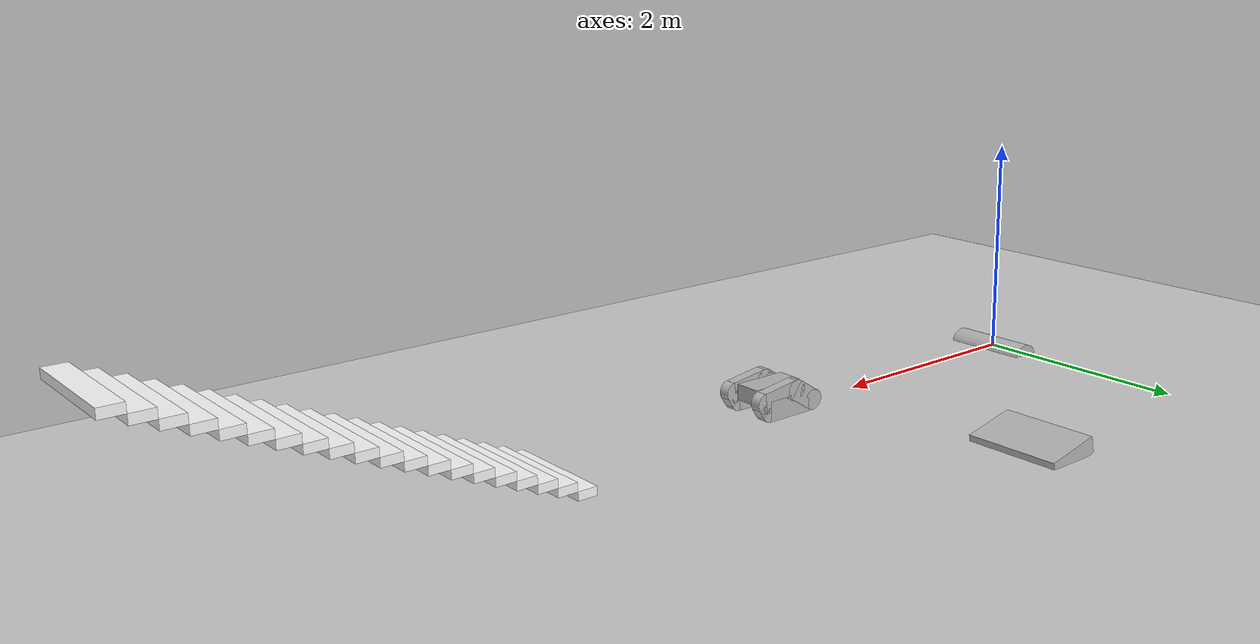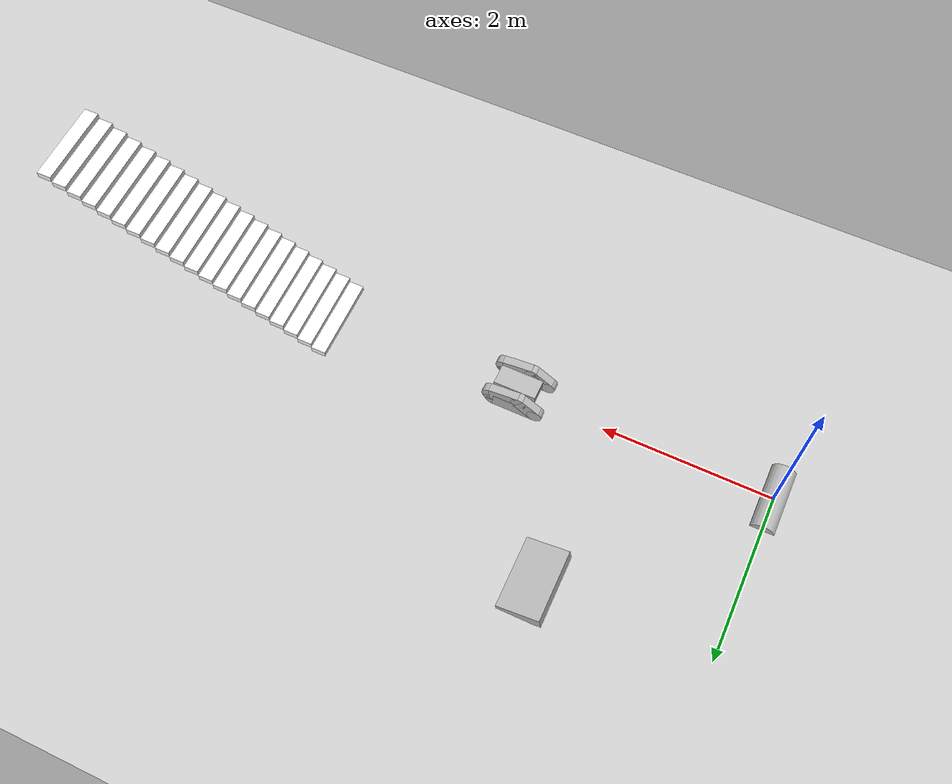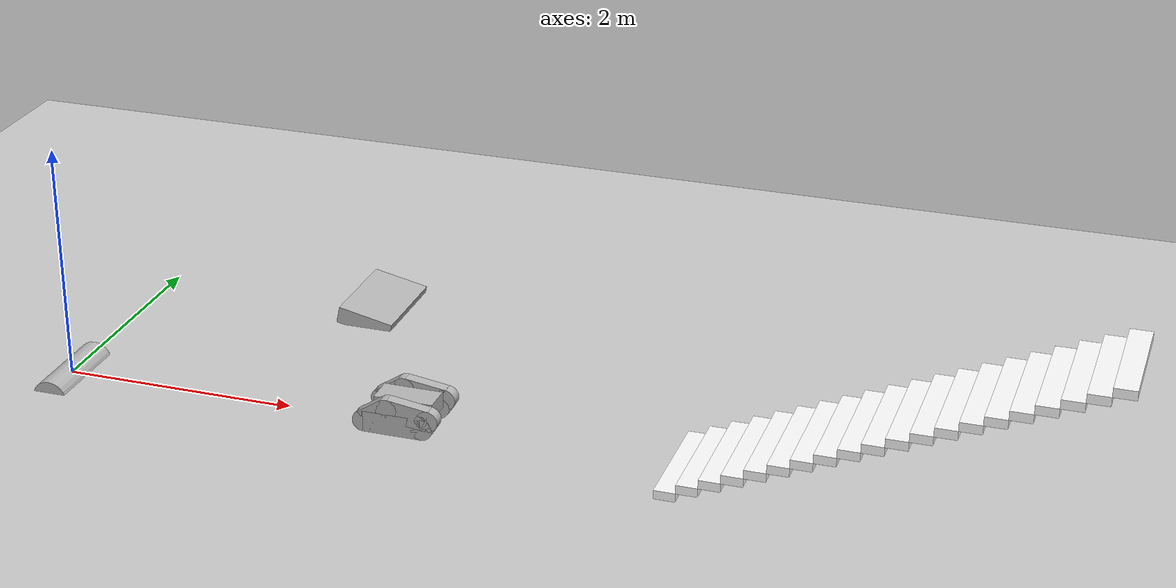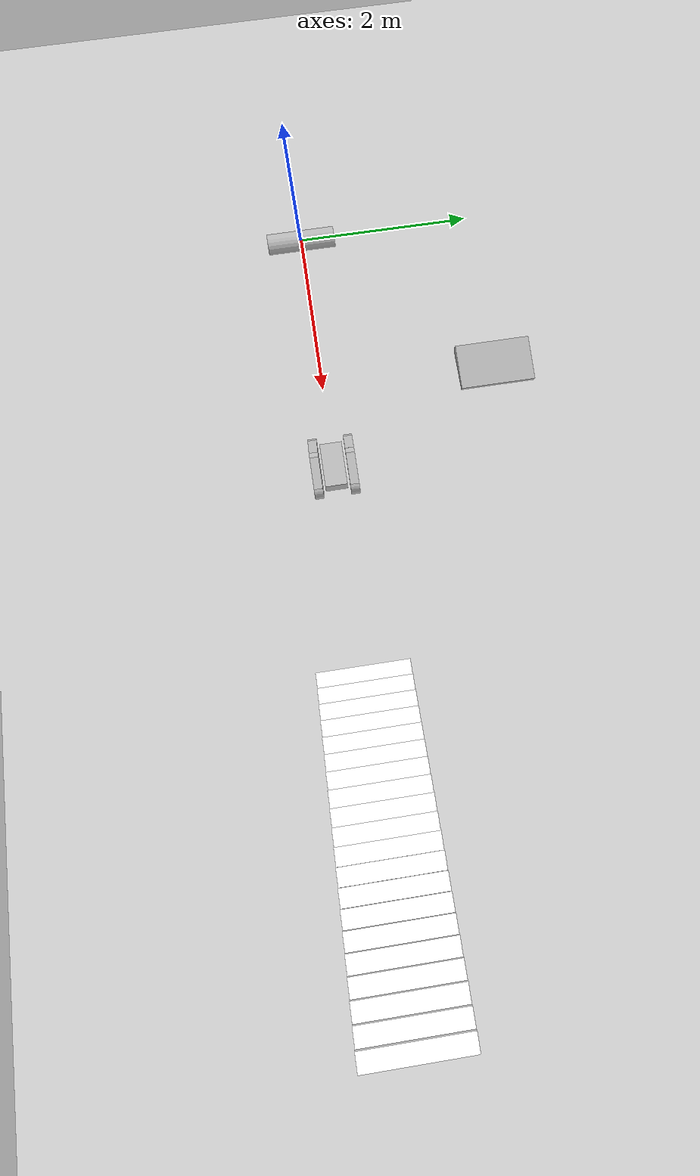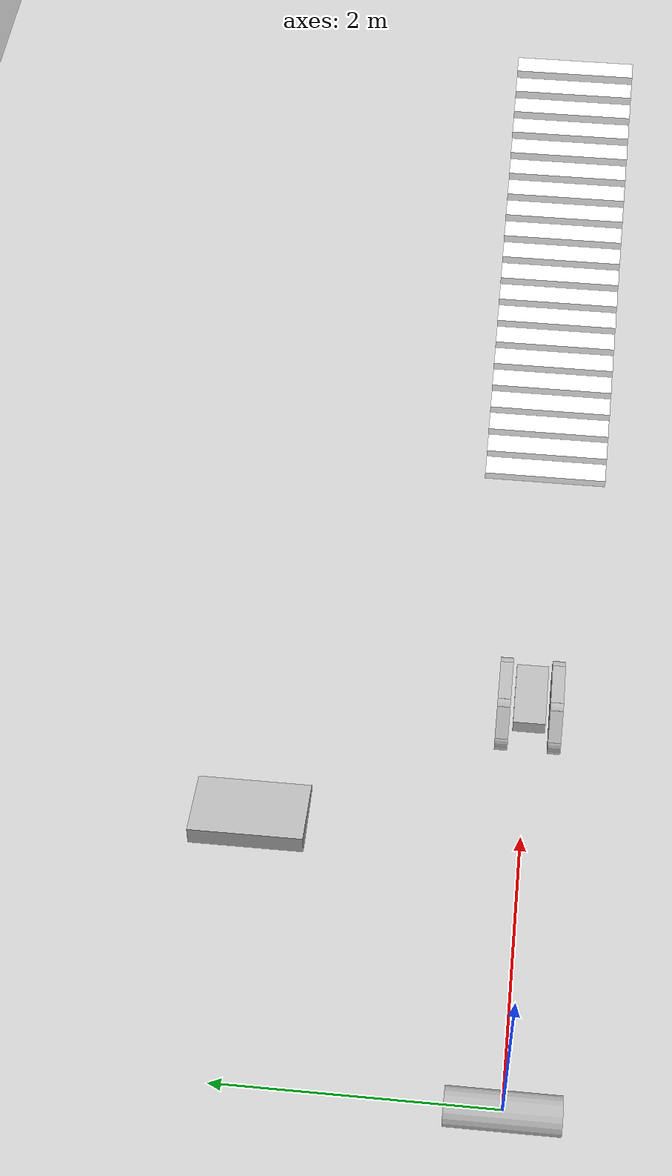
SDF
<sdf version="1.7">
 <world name="default">
  <physics name="4ms" type="ignored">
   <max_step_size>0.004</max_step_size>
   <real_time_factor>1.0</real_time_factor>
  </physics>
  <plugin name="gz::sim::systems::Physics" filename="gz-sim-physics-system"/>
  <plugin name="gz::sim::systems::UserCommands" filename="gz-sim-user-commands-system"/>
  <plugin name="gz::sim::systems::SceneBroadcaster" filename="gz-sim-scene-broadcaster-system"/>
  <scene><ambient>1 1 1 1</ambient><background>0.8 0.8 0.8 1</background><shadows>1</shadows></scene>
  <light name="sun" type="directional">
   <pose>0 0 10 0 0 0</pose>
   <diffuse>0.8 0.8 0.8 1</diffuse>
   <specular>0.8 0.8 0.8 1</specular>
   <attenuation>
    <range>1000</range>
    <constant>0.9</constant>
    <linear>0.01</linear>
    <quadratic>0.001</quadratic>
   </attenuation>
   <direction>-0.5 0.1 -0.9</direction>
  </light>
  <model name="ground_plane">
   <static>1</static>
   <link name="link">
    <collision name="collision">
     <geometry><plane><normal>0 0 1</normal><size>100 100</size></plane></geometry>
    </collision>
    <visual name="visual">
     <geometry><plane><normal>0 0 1</normal><size>100 100</size></plane></geometry>
     <material>
      <ambient>0.8 0.8 0.8 1</ambient>
      <diffuse>0.8 0.8 0.8 1</diffuse>
      <specular>0.8 0.8 0.8 1</specular>
     </material>
    </visual>
   </link>
  </model>
  <model name="simple_tracked">
   <pose>3 0 0.1 0 0 0</pose>
   <link name="base_link">
    <inertial>
     <pose>0.05 0 0.118 1.5708 0 0</pose>
     <mass>13.14</mass>
     <inertia>
      <ixx>0.10019</ixx>
      <ixy>0</ixy>
      <ixz>0</ixz>
      <iyy>0.345043</iyy>
      <iyz>0</iyz>
      <izz>0.302044</izz>
     </inertia>
    </inertial>
    <collision name="base_link_collision">
     <pose>0.05 0 0.118 0 0 0</pose>
     <geometry><box><size>0.50017 0.24093 0.139</size></box></geometry>
    </collision>
    <visual name="base_link_visual">
     <pose>0.05 0 0.118 0 0 0</pose>
     <geometry><box><size>0.50017 0.24093 0.139</size></box></geometry>
    </visual>
   </link>
   <link name="left_track">
    <pose>0 0.1985 0 0 0 0</pose>
    <inertial>
     <pose>0 0 0.0141 0 0 0</pose>
     <mass>6.06</mass>
     <inertia>
      <ixx>0.002731</ixx>
      <ixy>0</ixy>
      <ixz>0</ixz>
      <iyy>0.032554</iyy>
      <iyz>1.5e-05</iyz>
      <izz>0.031391</izz>
     </inertia>
    </inertial>
    <collision name="left_track_collision_cylinder_1">
     <pose>0.25 0 0.01855 1.5708 0 0</pose>
     <geometry><cylinder><length>0.09728</length><radius>0.09047</radius></cylinder></geometry>
     <surface><friction><ode><mu>0.9</mu><mu2>150</mu2><fdir1>0 1 0</fdir1></ode></friction></surface>
    </collision>
    <collision name="left_track_collision_cylinder_2">
     <pose>-0.25 0 0.01855 1.5708 0 0</pose>
     <geometry><cylinder><length>0.09728</length><radius>0.09047</radius></cylinder></geometry>
     <surface><friction><ode><mu>0.9</mu><mu2>150</mu2><fdir1>0 1 0</fdir1></ode></friction></surface>
    </collision>
    <collision name="left_track_collision_cylinder_4">
     <pose>0.3 0 0.1 1.5708 0 0</pose>
     <geometry><cylinder><length>0.09728</length><radius>0.09047</radius></cylinder></geometry>
     <surface><friction><ode><mu>0.9</mu><mu2>150</mu2><fdir1>0 1 0</fdir1></ode></friction></surface>
    </collision>
    <collision name="left_track_collision_box_1">
     <pose>0 0 0.01855 1.5708 0 1.5708</pose>
     <geometry><box><size>0.09728 0.18094 0.5</size></box></geometry>
     <surface><friction><ode><mu>0.9</mu><mu2>150</mu2><fdir1>0 1 0</fdir1></ode></friction></surface>
    </collision>
    <collision name="left_track_collision_box_4">
     <pose>0.275 0 0.05928 0.55058 0 1.5708</pose>
     <geometry><box><size>0.09728 0.18094 0.09557</size></box></geometry>
     <surface><friction><ode><mu>0.9</mu><mu2>150</mu2><fdir1>0 1 0</fdir1></ode></friction></surface>
    </collision>
    <visual name="left_track_visual_cylinder_1">
     <pose>0.25 0 0.01855 1.5708 0 0</pose>
     <geometry><cylinder><length>0.09728</length><radius>0.09047</radius></cylinder></geometry>
    </visual>
    <visual name="left_track_visual_cylinder_2">
     <pose>-0.25 0 0.01855 1.5708 0 0</pose>
     <geometry><cylinder><length>0.09728</length><radius>0.09047</radius></cylinder></geometry>
    </visual>
    <visual name="left_track_visual_cylinder_3">
     <pose>-0.05 0 0.15 1.5708 0 0</pose>
     <geometry><cylinder><length>0.09728</length><radius>0.09047</radius></cylinder></geometry>
    </visual>
    <visual name="left_track_visual_cylinder_4">
     <pose>0.3 0 0.1 1.5708 0 0</pose>
     <geometry><cylinder><length>0.09728</length><radius>0.09047</radius></cylinder></geometry>
    </visual>
    <visual name="left_track_visual_box_1">
     <pose>0 0 0.01855 1.5708 0 1.5708</pose>
     <geometry><box><size>0.09728 0.18094 0.5</size></box></geometry>
    </visual>
    <visual name="left_track_visual_box_2">
     <pose>-0.15 0 0.08428 0.98935 0 1.5708</pose>
     <geometry><box><size>0.09728 0.18094 0.23933</size></box></geometry>
    </visual>
    <visual name="left_track_visual_box_3">
     <pose>0.125 0 0.125 -1.4289 0 1.5708</pose>
     <geometry><box><size>0.09728 0.18094 0.35355</size></box></geometry>
    </visual>
    <visual name="left_track_visual_box_4">
     <pose>0.275 0 0.05928 0.55058 0 1.5708</pose>
     <geometry><box><size>0.09728 0.18094 0.09557</size></box></geometry>
    </visual>
   </link>
   <joint name="left_track_j" type="fixed"><child>left_track</child><parent>base_link</parent></joint>
   <link name="right_track">
    <pose>0 -0.1985 0 0 0 0</pose>
    <inertial>
     <pose>0 0 0.0141 0 0 0</pose>
     <mass>6.06</mass>
     <inertia>
      <ixx>0.002731</ixx>
      <ixy>0</ixy>
      <ixz>0</ixz>
      <iyy>0.032554</iyy>
      <iyz>1.5e-05</iyz>
      <izz>0.031391</izz>
     </inertia>
    </inertial>
    <collision name="right_track_collision_cylinder_1">
     <pose>0.25 0 0.01855 1.5708 0 0</pose>
     <geometry><cylinder><length>0.09728</length><radius>0.09047</radius></cylinder></geometry>
     <surface><friction><ode><mu>0.9</mu><mu2>150</mu2><fdir1>0 1 0</fdir1></ode></friction></surface>
    </collision>
    <collision name="right_track_collision_cylinder_2">
     <pose>-0.25 0 0.01855 1.5708 0 0</pose>
     <geometry><cylinder><length>0.09728</length><radius>0.09047</radius></cylinder></geometry>
     <surface><friction><ode><mu>0.9</mu><mu2>150</mu2><fdir1>0 1 0</fdir1></ode></friction></surface>
    </collision>
    <collision name="right_track_collision_cylinder_4">
     <pose>0.3 0 0.1 1.5708 0 0</pose>
     <geometry><cylinder><length>0.09728</length><radius>0.09047</radius></cylinder></geometry>
     <surface><friction><ode><mu>0.9</mu><mu2>150</mu2><fdir1>0 1 0</fdir1></ode></friction></surface>
    </collision>
    <collision name="right_track_collision_box_1">
     <pose>0 0 0.01855 1.5708 0 1.5708</pose>
     <geometry><box><size>0.09728 0.18094 0.5</size></box></geometry>
     <surface><friction><ode><mu>0.9</mu><mu2>150</mu2><fdir1>0 1 0</fdir1></ode></friction></surface>
    </collision>
    <collision name="right_track_collision_box_4">
     <pose>0.275 0 0.05928 0.55058 0 1.5708</pose>
     <geometry><box><size>0.09728 0.18094 0.09557</size></box></geometry>
     <surface><friction><ode><mu>0.9</mu><mu2>150</mu2><fdir1>0 1 0</fdir1></ode></friction></surface>
    </collision>
    <visual name="right_track_visual_cylinder_1">
     <pose>0.25 0 0.01855 1.5708 0 0</pose>
     <geometry><cylinder><length>0.09728</length><radius>0.09047</radius></cylinder></geometry>
    </visual>
    <visual name="right_track_visual_cylinder_2">
     <pose>-0.25 0 0.01855 1.5708 0 0</pose>
     <geometry><cylinder><length>0.09728</length><radius>0.09047</radius></cylinder></geometry>
    </visual>
    <visual name="right_track_visual_cylinder_3">
     <pose>-0.05 0 0.15 1.5708 0 0</pose>
     <geometry><cylinder><length>0.09728</length><radius>0.09047</radius></cylinder></geometry>
    </visual>
    <visual name="right_track_visual_cylinder_4">
     <pose>0.3 0 0.1 1.5708 0 0</pose>
     <geometry><cylinder><length>0.09728</length><radius>0.09047</radius></cylinder></geometry>
    </visual>
    <visual name="right_track_visual_box_1">
     <pose>0 0 0.01855 1.5708 0 1.5708</pose>
     <geometry><box><size>0.09728 0.18094 0.5</size></box></geometry>
    </visual>
    <visual name="right_track_visual_box_2">
     <pose>-0.15 0 0.08428 0.98935 0 1.5708</pose>
     <geometry><box><size>0.09728 0.18094 0.23933</size></box></geometry>
    </visual>
    <visual name="right_track_visual_box_3">
     <pose>0.125 0 0.125 -1.4289 0 1.5708</pose>
     <geometry><box><size>0.09728 0.18094 0.35355</size></box></geometry>
    </visual>
    <visual name="right_track_visual_box_4">
     <pose>0.275 0 0.05928 0.55058 0 1.5708</pose>
     <geometry><box><size>0.09728 0.18094 0.09557</size></box></geometry>
    </visual>
   </link>
   <joint name="right_track_j" type="fixed"><child>right_track</child><parent>base_link</parent></joint>
   <plugin name="gz::sim::systems::TrackedVehicle" filename="gz-sim-tracked-vehicle-system">
    <left_track><link>left_track</link></left_track>
    <left_track><link>front_left_flipper</link></left_track>
    <right_track><link>right_track</link></right_track>
    <right_track><link>front_right_flipper</link></right_track>
    <tracks_separation>0.4</tracks_separation>
    <tracks_height>0.18094</tracks_height>
    <steering_efficiency>0.5</steering_efficiency>
   </plugin>
   <plugin name="gz::sim::systems::TrackController" filename="gz-sim-track-controller-system">
    <link>left_track</link>
    <min_velocity>-5.0</min_velocity>
    <max_velocity>5.0</max_velocity>
   </plugin>
   <plugin name="gz::sim::systems::TrackController" filename="gz-sim-track-controller-system">
    <link>right_track</link>
    <min_velocity>-5.0</min_velocity>
    <max_velocity>5.0</max_velocity>
   </plugin>
   <plugin name="gz::sim::systems::TrackController" filename="gz-sim-track-controller-system">
    <link>front_left_flipper</link>
    <min_velocity>-5.0</min_velocity>
    <max_velocity>5.0</max_velocity>
   </plugin>
   <plugin name="gz::sim::systems::TrackController" filename="gz-sim-track-controller-system">
    <link>front_right_flipper</link>
    <min_velocity>-5.0</min_velocity>
    <max_velocity>5.0</max_velocity>
   </plugin>
   <plugin filename="gz-sim-triggered-publisher-system" name="gz::sim::systems::TriggeredPublisher">
    <input type="gz.msgs.Int32" topic="/keyboard/keypress"><match field="data">87</match></input>
    <output type="gz.msgs.Twist" topic="/model/simple_tracked/cmd_vel">linear: {x: 1.0}, angular: {z: 0.0}</output>
   </plugin>
   <plugin filename="gz-sim-triggered-publisher-system" name="gz::sim::systems::TriggeredPublisher">
    <input type="gz.msgs.Int32" topic="/keyboard/keypress"><match field="data">88</match></input>
    <output type="gz.msgs.Twist" topic="/model/simple_tracked/cmd_vel">linear: {x: -1.0}, angular: {z: 0.0}</output>
   </plugin>
   <plugin filename="gz-sim-triggered-publisher-system" name="gz::sim::systems::TriggeredPublisher">
    <input type="gz.msgs.Int32" topic="/keyboard/keypress"><match field="data">83</match></input>
    <output type="gz.msgs.Twist" topic="/model/simple_tracked/cmd_vel">linear: {x: 0.0}, angular: {z: 0.0}</output>
   </plugin>
   <plugin filename="gz-sim-triggered-publisher-system" name="gz::sim::systems::TriggeredPublisher">
    <input type="gz.msgs.Int32" topic="/keyboard/keypress"><match field="data">65</match></input>
    <output type="gz.msgs.Twist" topic="/model/simple_tracked/cmd_vel">linear: {x: 0.0}, angular: {z: 1.0}</output>
   </plugin>
   <plugin filename="gz-sim-triggered-publisher-system" name="gz::sim::systems::TriggeredPublisher">
    <input type="gz.msgs.Int32" topic="/keyboard/keypress"><match field="data">68</match></input>
    <output type="gz.msgs.Twist" topic="/model/simple_tracked/cmd_vel">linear: {x: 0.0}, angular: {z: -1.0}</output>
   </plugin>
   <plugin filename="gz-sim-triggered-publisher-system" name="gz::sim::systems::TriggeredPublisher">
    <input type="gz.msgs.Int32" topic="/keyboard/keypress"><match field="data">81</match></input>
    <output type="gz.msgs.Twist" topic="/model/simple_tracked/cmd_vel">linear: {x: 1.0}, angular: {z: 1.0}</output>
   </plugin>
   <plugin filename="gz-sim-triggered-publisher-system" name="gz::sim::systems::TriggeredPublisher">
    <input type="gz.msgs.Int32" topic="/keyboard/keypress"><match field="data">69</match></input>
    <output type="gz.msgs.Twist" topic="/model/simple_tracked/cmd_vel">linear: {x: 1.0}, angular: {z: -1.0}</output>
   </plugin>
   <plugin filename="gz-sim-triggered-publisher-system" name="gz::sim::systems::TriggeredPublisher">
    <input type="gz.msgs.Int32" topic="/keyboard/keypress"><match field="data">90</match></input>
    <output type="gz.msgs.Twist" topic="/model/simple_tracked/cmd_vel">linear: {x: -1.0}, angular: {z: 1.0}</output>
   </plugin>
   <plugin filename="gz-sim-triggered-publisher-system" name="gz::sim::systems::TriggeredPublisher">
    <input type="gz.msgs.Int32" topic="/keyboard/keypress"><match field="data">67</match></input>
    <output type="gz.msgs.Twist" topic="/model/simple_tracked/cmd_vel">linear: {x: -1.0}, angular: {z: -1.0}</output>
   </plugin>
  </model>
  <model name="stairs_very_simple">
   <pose>7 0 0 0 0 1.5708</pose>
   <link name="Stairs_3">
    <visual name="Stairs_3_Visual_0">
     <pose>0 1.6625 0.0375 0 0 0</pose>
     <geometry><box><size>1 0.175 0.075</size></box></geometry>
     <material><ambient>1 1 1 1</ambient></material>
     <meta><layer>0</layer></meta>
    </visual>
    <collision name="Stairs_3_Collision_0">
     <geometry><box><size>1 0.175 0.075</size></box></geometry>
     <pose>0 1.6625 0.0375 0 0 0</pose>
    </collision>
    <visual name="Stairs_3_Visual_1">
     <pose>0 1.4875 0.1125 0 0 0</pose>
     <geometry><box><size>1 0.175 0.075</size></box></geometry>
     <material><ambient>1 1 1 1</ambient></material>
     <meta><layer>0</layer></meta>
    </visual>
    <collision name="Stairs_3_Collision_1">
     <geometry><box><size>1 0.175 0.075</size></box></geometry>
     <pose>0 1.4875 0.1125 0 0 0</pose>
    </collision>
    <visual name="Stairs_3_Visual_2">
     <pose>0 1.3125 0.1875 0 0 0</pose>
     <geometry><box><size>1 0.175 0.075</size></box></geometry>
     <material><ambient>1 1 1 1</ambient></material>
     <meta><layer>0</layer></meta>
    </visual>
    <collision name="Stairs_3_Collision_2">
     <geometry><box><size>1 0.175 0.075</size></box></geometry>
     <pose>0 1.3125 0.1875 0 0 0</pose>
    </collision>
    <visual name="Stairs_3_Visual_3">
     <pose>0 1.1375 0.2625 0 0 0</pose>
     <geometry><box><size>1 0.175 0.075</size></box></geometry>
     <material><ambient>1 1 1 1</ambient></material>
     <meta><layer>0</layer></meta>
    </visual>
    <collision name="Stairs_3_Collision_3">
     <geometry><box><size>1 0.175 0.075</size></box></geometry>
     <pose>0 1.1375 0.2625 0 0 0</pose>
    </collision>
    <visual name="Stairs_3_Visual_4">
     <pose>0 0.9625 0.3375 0 0 0</pose>
     <geometry><box><size>1 0.175 0.075</size></box></geometry>
     <material><ambient>1 1 1 1</ambient></material>
     <meta><layer>0</layer></meta>
    </visual>
    <collision name="Stairs_3_Collision_4">
     <geometry><box><size>1 0.175 0.075</size></box></geometry>
     <pose>0 0.9625 0.3375 0 0 0</pose>
    </collision>
    <visual name="Stairs_3_Visual_5">
     <pose>0 0.7875 0.4125 0 0 0</pose>
     <geometry><box><size>1 0.175 0.075</size></box></geometry>
     <material><ambient>1 1 1 1</ambient></material>
     <meta><layer>0</layer></meta>
    </visual>
    <collision name="Stairs_3_Collision_5">
     <geometry><box><size>1 0.175 0.075</size></box></geometry>
     <pose>0 0.7875 0.4125 0 0 0</pose>
    </collision>
    <visual name="Stairs_3_Visual_6">
     <pose>0 0.6125 0.4875 0 0 0</pose>
     <geometry><box><size>1 0.175 0.075</size></box></geometry>
     <material><ambient>1 1 1 1</ambient></material>
     <meta><layer>0</layer></meta>
    </visual>
    <collision name="Stairs_3_Collision_6">
     <geometry><box><size>1 0.175 0.075</size></box></geometry>
     <pose>0 0.6125 0.4875 0 0 0</pose>
    </collision>
    <visual name="Stairs_3_Visual_7">
     <pose>0 0.4375 0.5625 0 0 0</pose>
     <geometry><box><size>1 0.175 0.075</size></box></geometry>
     <material><ambient>1 1 1 1</ambient></material>
     <meta><layer>0</layer></meta>
    </visual>
    <collision name="Stairs_3_Collision_7">
     <geometry><box><size>1 0.175 0.075</size></box></geometry>
     <pose>0 0.4375 0.5625 0 0 0</pose>
    </collision>
    <visual name="Stairs_3_Visual_8">
     <pose>0 0.2625 0.6375 0 0 0</pose>
     <geometry><box><size>1 0.175 0.075</size></box></geometry>
     <material><ambient>1 1 1 1</ambient></material>
     <meta><layer>0</layer></meta>
    </visual>
    <collision name="Stairs_3_Collision_8">
     <geometry><box><size>1 0.175 0.075</size></box></geometry>
     <pose>0 0.2625 0.6375 0 0 0</pose>
    </collision>
    <visual name="Stairs_3_Visual_9">
     <pose>0 0.0875 0.7125 0 0 0</pose>
     <geometry><box><size>1 0.175 0.075</size></box></geometry>
     <material><ambient>1 1 1 1</ambient></material>
     <meta><layer>0</layer></meta>
    </visual>
    <collision name="Stairs_3_Collision_9">
     <geometry><box><size>1 0.175 0.075</size></box></geometry>
     <pose>0 0.0875 0.7125 0 0 0</pose>
    </collision>
    <visual name="Stairs_3_Visual_10">
     <pose>0 -0.0875 0.7875 0 0 0</pose>
     <geometry><box><size>1 0.175 0.075</size></box></geometry>
     <material><ambient>1 1 1 1</ambient></material>
     <meta><layer>0</layer></meta>
    </visual>
    <collision name="Stairs_3_Collision_10">
     <geometry><box><size>1 0.175 0.075</size></box></geometry>
     <pose>0 -0.0875 0.7875 0 0 0</pose>
    </collision>
    <visual name="Stairs_3_Visual_11">
     <pose>0 -0.2625 0.8625 0 0 0</pose>
     <geometry><box><size>1 0.175 0.075</size></box></geometry>
     <material><ambient>1 1 1 1</ambient></material>
     <meta><layer>0</layer></meta>
    </visual>
    <collision name="Stairs_3_Collision_11">
     <geometry><box><size>1 0.175 0.075</size></box></geometry>
     <pose>0 -0.2625 0.8625 0 0 0</pose>
    </collision>
    <visual name="Stairs_3_Visual_12">
     <pose>0 -0.4375 0.9375 0 0 0</pose>
     <geometry><box><size>1 0.175 0.075</size></box></geometry>
     <material><ambient>1 1 1 1</ambient></material>
     <meta><layer>0</layer></meta>
    </visual>
    <collision name="Stairs_3_Collision_12">
     <geometry><box><size>1 0.175 0.075</size></box></geometry>
     <pose>0 -0.4375 0.9375 0 0 0</pose>
    </collision>
    <visual name="Stairs_3_Visual_13">
     <pose>0 -0.6125 1.0125 0 0 0</pose>
     <geometry><box><size>1 0.175 0.075</size></box></geometry>
     <material><ambient>1 1 1 1</ambient></material>
     <meta><layer>0</layer></meta>
    </visual>
    <collision name="Stairs_3_Collision_13">
     <geometry><box><size>1 0.175 0.075</size></box></geometry>
     <pose>0 -0.6125 1.0125 0 0 0</pose>
    </collision>
    <visual name="Stairs_3_Visual_14">
     <pose>0 -0.7875 1.0875 0 0 0</pose>
     <geometry><box><size>1 0.175 0.075</size></box></geometry>
     <material><ambient>1 1 1 1</ambient></material>
     <meta><layer>0</layer></meta>
    </visual>
    <collision name="Stairs_3_Collision_14">
     <geometry><box><size>1 0.175 0.075</size></box></geometry>
     <pose>0 -0.7875 1.0875 0 0 0</pose>
    </collision>
    <visual name="Stairs_3_Visual_15">
     <pose>0 -0.9625 1.1625 0 0 0</pose>
     <geometry><box><size>1 0.175 0.075</size></box></geometry>
     <material><ambient>1 1 1 1</ambient></material>
     <meta><layer>0</layer></meta>
    </visual>
    <collision name="Stairs_3_Collision_15">
     <geometry><box><size>1 0.175 0.075</size></box></geometry>
     <pose>0 -0.9625 1.1625 0 0 0</pose>
    </collision>
    <visual name="Stairs_3_Visual_16">
     <pose>0 -1.1375 1.2375 0 0 0</pose>
     <geometry><box><size>1 0.175 0.075</size></box></geometry>
     <material><ambient>1 1 1 1</ambient></material>
     <meta><layer>0</layer></meta>
    </visual>
    <collision name="Stairs_3_Collision_16">
     <geometry><box><size>1 0.175 0.075</size></box></geometry>
     <pose>0 -1.1375 1.2375 0 0 0</pose>
    </collision>
    <visual name="Stairs_3_Visual_17">
     <pose>0 -1.3125 1.3125 0 0 0</pose>
     <geometry><box><size>1 0.175 0.075</size></box></geometry>
     <material><ambient>1 1 1 1</ambient></material>
     <meta><layer>0</layer></meta>
    </visual>
    <collision name="Stairs_3_Collision_17">
     <geometry><box><size>1 0.175 0.075</size></box></geometry>
     <pose>0 -1.3125 1.3125 0 0 0</pose>
    </collision>
    <visual name="Stairs_3_Visual_18">
     <pose>0 -1.4875 1.3875 0 0 0</pose>
     <geometry><box><size>1 0.175 0.075</size></box></geometry>
     <material><ambient>1 1 1 1</ambient></material>
     <meta><layer>0</layer></meta>
    </visual>
    <collision name="Stairs_3_Collision_18">
     <geometry><box><size>1 0.175 0.075</size></box></geometry>
     <pose>0 -1.4875 1.3875 0 0 0</pose>
    </collision>
    <visual name="Stairs_3_Visual_19">
     <pose>0 -1.6625 1.4625 0 0 0</pose>
     <geometry><box><size>1 0.175 0.075</size></box></geometry>
     <material><ambient>1 1 1 1</ambient></material>
     <meta><layer>0</layer></meta>
    </visual>
    <collision name="Stairs_3_Collision_19">
     <geometry><box><size>1 0.175 0.075</size></box></geometry>
     <pose>0 -1.6625 1.4625 0 0 0</pose>
    </collision>
   </link>
   <static>1</static>
  </model>
  <model name="cylinder_obstacle">
   <static>1</static>
   <pose>0 0 -0.06 0 0 1.5708</pose>
   <link name="cylinder">
    <collision name="cylinder_collision">
     <pose>0 0 0 0 1.5708 0</pose>
     <geometry><cylinder><radius>0.15</radius><length>0.8</length></cylinder></geometry>
     <surface><friction><ode><mu>1</mu></ode></friction></surface>
    </collision>
    <visual name="cylinder_visual">
     <pose>0 0 0 0 1.5708 0</pose>
     <geometry><cylinder><radius>0.15</radius><length>0.8</length></cylinder></geometry>
    </visual>
   </link>
  </model>
  <model name="box_obstacle">
   <static>1</static>
   <pose>2 2 0.028 1.7821 0 1.5708</pose>
   <link name="box">
    <collision name="box_collision">
     <geometry><box><size>0.85 0.15 0.5</size></box></geometry>
     <surface><friction><ode><mu>1</mu></ode></friction></surface>
    </collision>
    <visual name="box_visual"><geometry><box><size>0.85 0.15 0.5</size></box></geometry></visual>
   </link>
  </model>
  <gravity>0 0 -9.8</gravity>
  <magnetic_field>6e-06 2.3e-05 -4.2e-05</magnetic_field>
  <atmosphere type="adiabatic"/>
 </world>
</sdf>
